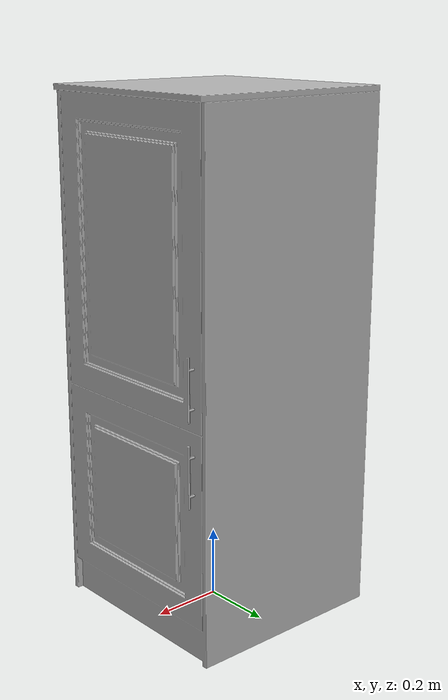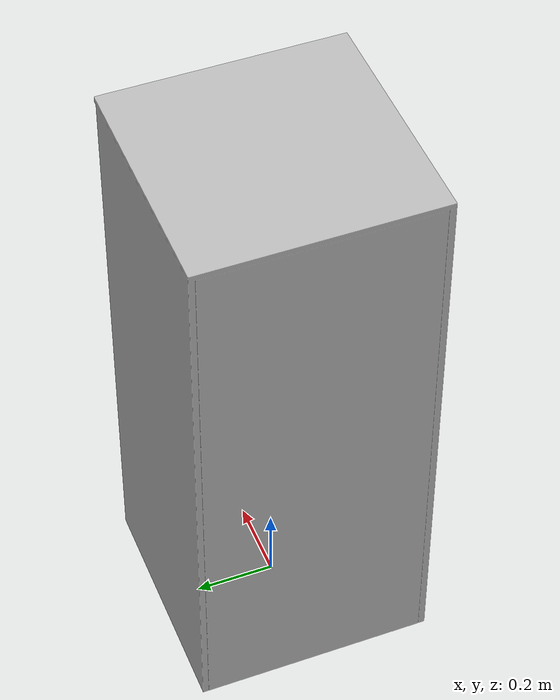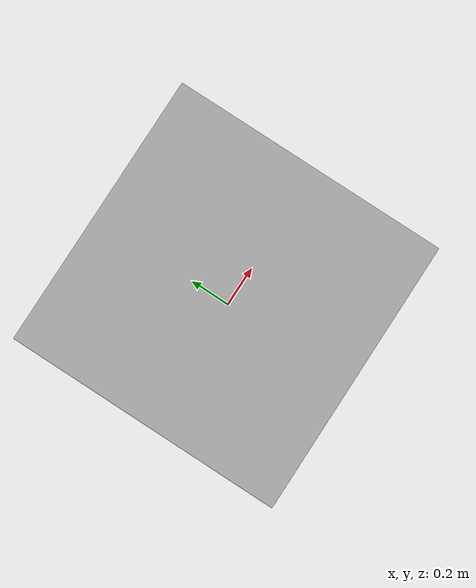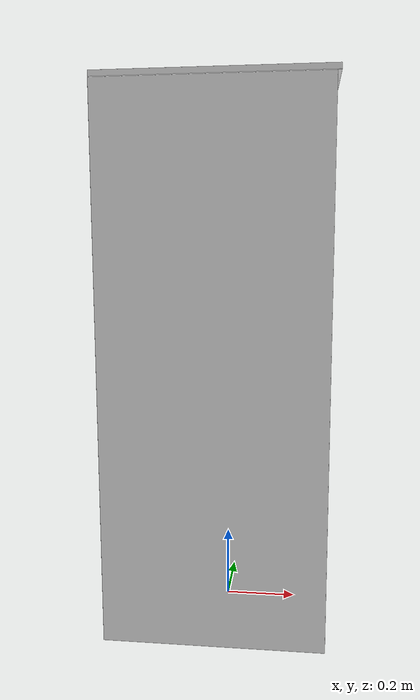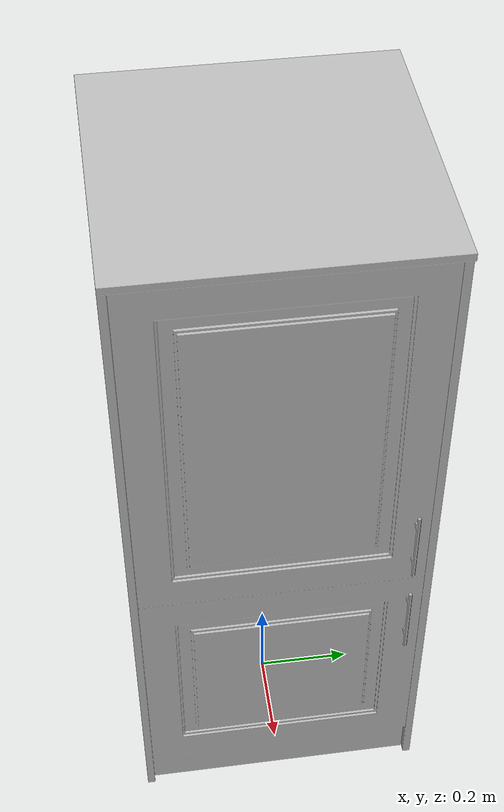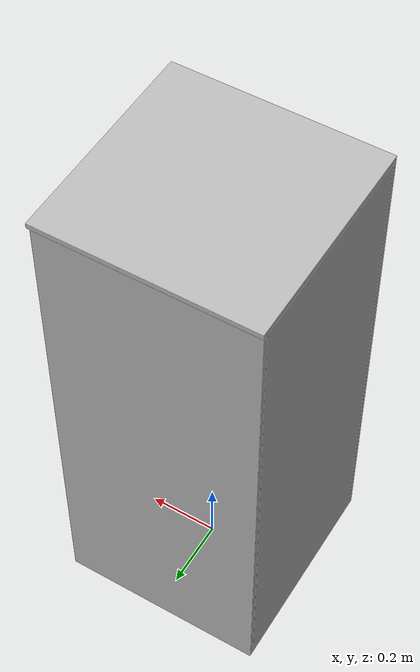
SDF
<?xml version='1.0'?>
<sdf version='1.4'>
  <model name='666'>
    <pose>0 0 0 0 0 0</pose>
    <static>true</static>
    <link name='link'>
      <collision name='collision'>
        <pose>0 0 0 0 0 0</pose>
        <geometry>
          <box>
            <size>0.610464 0.6 2</size>
          </box>
        </geometry>
      </collision>
      <visual name='visual'>
        <pose>0 0 0 0 0 0</pose>
        <geometry>
          <mesh><uri>model://666/666.dae</uri></mesh>
        </geometry>
      </visual>
    </link>
  </model>
</sdf>
